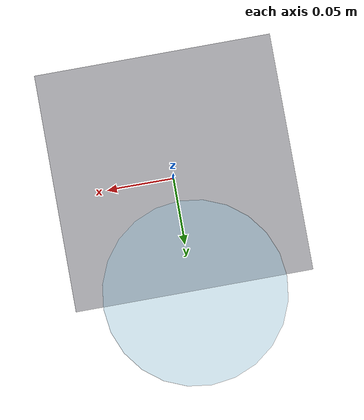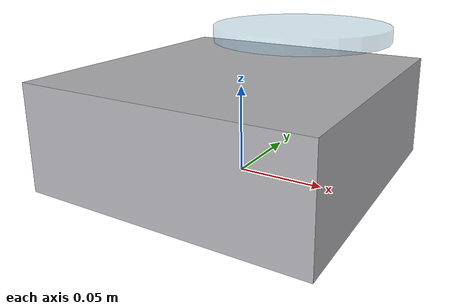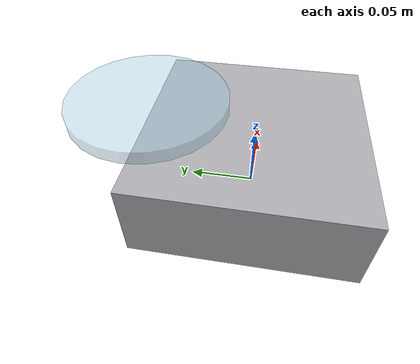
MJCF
<?xml version="1.0" encoding="utf-8"?>
<mujoco model="spin_coater">
  <compiler angle="radian" autolimits="true"/>
  <default>
    <default class="body"><geom contype="1" conaffinity="1"/></default>
  </default>
  <worldbody>
    <body name="base">
      <geom type="box" size="0.08 0.08 0.03" pos="0 0 0.03" rgba="0.7 0.7 0.72 1" class="body"/>
      <body name="lid" pos="0 0.08 0.07">
        <joint name="lid_joint" type="hinge" axis="1 0 0" range="0 1.8" damping="0.3" frictionloss="0.3"/>
  <geom type="cylinder" size="0.06 0.005" pos="0 0 0" rgba="0.6 0.8 0.9 0.4" class="body"/>
      </body>
    </body>
  </worldbody>
</mujoco>
